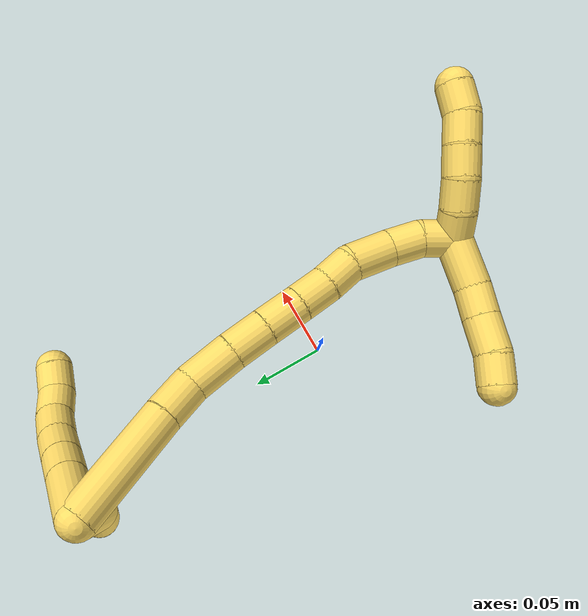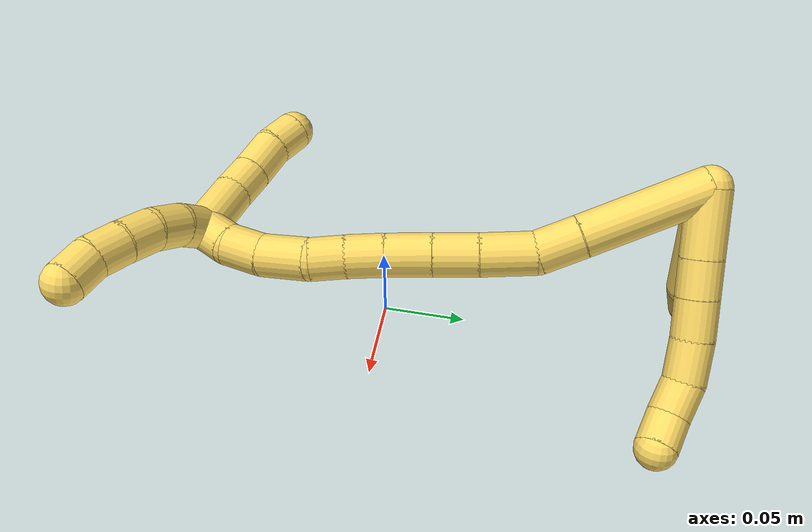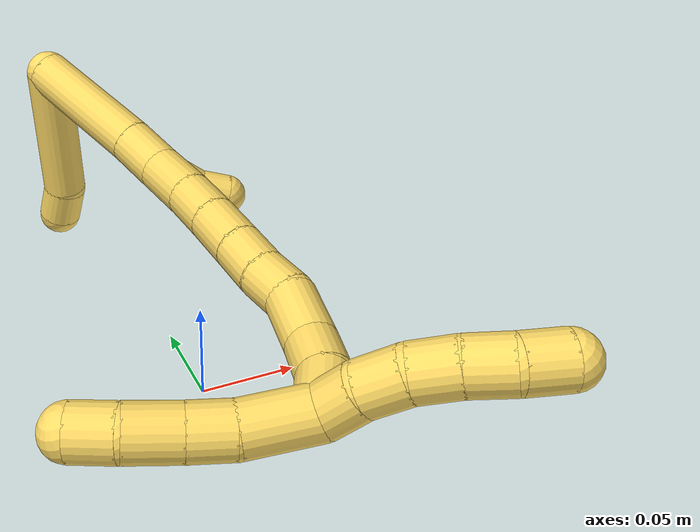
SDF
<sdf version="1.7">
 <world name="default">
  <model name="5">
   <static>0</static>
   <link name="5">
    <collision name="collision-cylinder-e_1_2_8">
     <pose>0.002743 0.005391 -0.018534 -2.85853 0.141178 -0.921262</pose>
     <geometry><cylinder><radius>0.0125</radius><length>0.038993</length></cylinder></geometry>
     <surface>
      <friction><ode><mu>1.16</mu><mu2>1.16</mu2><slip1>0</slip1><slip2>0</slip2></ode></friction>
      <contact><ode><kp>1e+06</kp><kd>1</kd><max_vel>0</max_vel><min_depth>0.001</min_depth></ode></contact>
     </surface>
    </collision>
    <visual name="visual-cylinder-e_1_2_8">
     <pose>0.002743 0.005391 -0.018534 -2.85853 0.141178 -0.921262</pose>
     <geometry><cylinder><radius>0.0125</radius><length>0.038993</length></cylinder></geometry>
     <material><ambient>1 0.858824 0.4 1</ambient></material>
    </visual>
    <collision name="collision-cylinder-e_2_8_9">
     <pose>0.006973 0.013836 -0.047473 -2.85613 0.136229 -0.886433</pose>
     <geometry><cylinder><radius>0.0125</radius><length>0.02189</length></cylinder></geometry>
     <surface>
      <friction><ode><mu>1.16</mu><mu2>1.16</mu2><slip1>0</slip1><slip2>0</slip2></ode></friction>
      <contact><ode><kp>1e+06</kp><kd>1</kd><max_vel>0</max_vel><min_depth>0.001</min_depth></ode></contact>
     </surface>
    </collision>
    <visual name="visual-cylinder-e_2_8_9">
     <pose>0.006973 0.013836 -0.047473 -2.85613 0.136229 -0.886433</pose>
     <geometry><cylinder><radius>0.0125</radius><length>0.02189</length></cylinder></geometry>
     <material><ambient>1 0.858824 0.4 1</ambient></material>
    </visual>
    <collision name="collision-cylinder-e_3_9_10">
     <pose>0.009973 0.02006 -0.069017 -2.8643 0.129939 -0.872555</pose>
     <geometry><cylinder><radius>0.0125</radius><length>0.02336</length></cylinder></geometry>
     <surface>
      <friction><ode><mu>1.16</mu><mu2>1.16</mu2><slip1>0</slip1><slip2>0</slip2></ode></friction>
      <contact><ode><kp>1e+06</kp><kd>1</kd><max_vel>0</max_vel><min_depth>0.001</min_depth></ode></contact>
     </surface>
    </collision>
    <visual name="visual-cylinder-e_3_9_10">
     <pose>0.009973 0.02006 -0.069017 -2.8643 0.129939 -0.872555</pose>
     <geometry><cylinder><radius>0.0125</radius><length>0.02336</length></cylinder></geometry>
     <material><ambient>1 0.858824 0.4 1</ambient></material>
    </visual>
    <collision name="collision-cylinder-e_4_10_11">
     <pose>0.014399 0.026337 -0.091719 -2.87916 0.23868 -1.47506</pose>
     <geometry><cylinder><radius>0.0125</radius><length>0.024644</length></cylinder></geometry>
     <surface>
      <friction><ode><mu>1.16</mu><mu2>1.16</mu2><slip1>0</slip1><slip2>0</slip2></ode></friction>
      <contact><ode><kp>1e+06</kp><kd>1</kd><max_vel>0</max_vel><min_depth>0.001</min_depth></ode></contact>
     </surface>
    </collision>
    <visual name="visual-cylinder-e_4_10_11">
     <pose>0.014399 0.026337 -0.091719 -2.87916 0.23868 -1.47506</pose>
     <geometry><cylinder><radius>0.0125</radius><length>0.024644</length></cylinder></geometry>
     <material><ambient>1 0.858824 0.4 1</ambient></material>
    </visual>
    <collision name="collision-cylinder-e_5_11_12">
     <pose>0.022742 0.031486 -0.112072 -2.91325 0.541638 -2.35824</pose>
     <geometry><cylinder><radius>0.0125</radius><length>0.021064</length></cylinder></geometry>
     <surface>
      <friction><ode><mu>1.16</mu><mu2>1.16</mu2><slip1>0</slip1><slip2>0</slip2></ode></friction>
      <contact><ode><kp>1e+06</kp><kd>1</kd><max_vel>0</max_vel><min_depth>0.001</min_depth></ode></contact>
     </surface>
    </collision>
    <visual name="visual-cylinder-e_5_11_12">
     <pose>0.022742 0.031486 -0.112072 -2.91325 0.541638 -2.35824</pose>
     <geometry><cylinder><radius>0.0125</radius><length>0.021064</length></cylinder></geometry>
     <material><ambient>1 0.858824 0.4 1</ambient></material>
    </visual>
    <collision name="collision-cylinder-e_6_12_6">
     <pose>0.034948 0.037489 -0.127099 -2.57583 0.742234 -1.8585</pose>
     <geometry><cylinder><radius>0.0125</radius><length>0.020049</length></cylinder></geometry>
     <surface>
      <friction><ode><mu>1.16</mu><mu2>1.16</mu2><slip1>0</slip1><slip2>0</slip2></ode></friction>
      <contact><ode><kp>1e+06</kp><kd>1</kd><max_vel>0</max_vel><min_depth>0.001</min_depth></ode></contact>
     </surface>
    </collision>
    <visual name="visual-cylinder-e_6_12_6">
     <pose>0.034948 0.037489 -0.127099 -2.57583 0.742234 -1.8585</pose>
     <geometry><cylinder><radius>0.0125</radius><length>0.020049</length></cylinder></geometry>
     <material><ambient>1 0.858824 0.4 1</ambient></material>
    </visual>
    <collision name="collision-cylinder-e_1_2_13">
     <pose>-0.0119 -0.008181 -0.036447 2.92078 -0.30841 -1.90255</pose>
     <geometry><cylinder><radius>0.0125</radius><length>0.078407</length></cylinder></geometry>
     <surface>
      <friction><ode><mu>1.16</mu><mu2>1.16</mu2><slip1>0</slip1><slip2>0</slip2></ode></friction>
      <contact><ode><kp>1e+06</kp><kd>1</kd><max_vel>0</max_vel><min_depth>0.001</min_depth></ode></contact>
     </surface>
    </collision>
    <visual name="visual-cylinder-e_1_2_13">
     <pose>-0.0119 -0.008181 -0.036447 2.92078 -0.30841 -1.90255</pose>
     <geometry><cylinder><radius>0.0125</radius><length>0.078407</length></cylinder></geometry>
     <material><ambient>1 0.858824 0.4 1</ambient></material>
    </visual>
    <collision name="collision-cylinder-e_2_13_5">
     <pose>-0.029754 -0.018867 -0.081545 2.85987 -0.584097 -2.26016</pose>
     <geometry><cylinder><radius>0.0125</radius><length>0.021593</length></cylinder></geometry>
     <surface>
      <friction><ode><mu>1.16</mu><mu2>1.16</mu2><slip1>0</slip1><slip2>0</slip2></ode></friction>
      <contact><ode><kp>1e+06</kp><kd>1</kd><max_vel>0</max_vel><min_depth>0.001</min_depth></ode></contact>
     </surface>
    </collision>
    <visual name="visual-cylinder-e_2_13_5">
     <pose>-0.029754 -0.018867 -0.081545 2.85987 -0.584097 -2.26016</pose>
     <geometry><cylinder><radius>0.0125</radius><length>0.021593</length></cylinder></geometry>
     <material><ambient>1 0.858824 0.4 1</ambient></material>
    </visual>
    <collision name="collision-cylinder-e_1_2_14">
     <pose>0.030129 -0.014168 -0.016441 2.4303 0.94654 1.88652</pose>
     <geometry><cylinder><radius>0.0125</radius><length>0.074263</length></cylinder></geometry>
     <surface>
      <friction><ode><mu>1.16</mu><mu2>1.16</mu2><slip1>0</slip1><slip2>0</slip2></ode></friction>
      <contact><ode><kp>1e+06</kp><kd>1</kd><max_vel>0</max_vel><min_depth>0.001</min_depth></ode></contact>
     </surface>
    </collision>
    <visual name="visual-cylinder-e_1_2_14">
     <pose>0.030129 -0.014168 -0.016441 2.4303 0.94654 1.88652</pose>
     <geometry><cylinder><radius>0.0125</radius><length>0.074263</length></cylinder></geometry>
     <material><ambient>1 0.858824 0.4 1</ambient></material>
    </visual>
    <collision name="collision-cylinder-e_2_14_15">
     <pose>0.070404 -0.033771 -0.038806 2.39936 0.900734 1.78622</pose>
     <geometry><cylinder><radius>0.0125</radius><length>0.025891</length></cylinder></geometry>
     <surface>
      <friction><ode><mu>1.16</mu><mu2>1.16</mu2><slip1>0</slip1><slip2>0</slip2></ode></friction>
      <contact><ode><kp>1e+06</kp><kd>1</kd><max_vel>0</max_vel><min_depth>0.001</min_depth></ode></contact>
     </surface>
    </collision>
    <visual name="visual-cylinder-e_2_14_15">
     <pose>0.070404 -0.033771 -0.038806 2.39936 0.900734 1.78622</pose>
     <geometry><cylinder><radius>0.0125</radius><length>0.025891</length></cylinder></geometry>
     <material><ambient>1 0.858824 0.4 1</ambient></material>
    </visual>
    <collision name="collision-cylinder-e_3_15_16">
     <pose>0.093639 -0.047773 -0.047172 1.8483 0.973173 1.22245</pose>
     <geometry><cylinder><radius>0.0125</radius><length>0.031667</length></cylinder></geometry>
     <surface>
      <friction><ode><mu>1.16</mu><mu2>1.16</mu2><slip1>0</slip1><slip2>0</slip2></ode></friction>
      <contact><ode><kp>1e+06</kp><kd>1</kd><max_vel>0</max_vel><min_depth>0.001</min_depth></ode></contact>
     </surface>
    </collision>
    <visual name="visual-cylinder-e_3_15_16">
     <pose>0.093639 -0.047773 -0.047172 1.8483 0.973173 1.22245</pose>
     <geometry><cylinder><radius>0.0125</radius><length>0.031667</length></cylinder></geometry>
     <material><ambient>1 0.858824 0.4 1</ambient></material>
    </visual>
    <collision name="collision-cylinder-e_4_16_17">
     <pose>0.116957 -0.06381 -0.051372 1.80219 0.927208 1.12642</pose>
     <geometry><cylinder><radius>0.0125</radius><length>0.025574</length></cylinder></geometry>
     <surface>
      <friction><ode><mu>1.16</mu><mu2>1.16</mu2><slip1>0</slip1><slip2>0</slip2></ode></friction>
      <contact><ode><kp>1e+06</kp><kd>1</kd><max_vel>0</max_vel><min_depth>0.001</min_depth></ode></contact>
     </surface>
    </collision>
    <visual name="visual-cylinder-e_4_16_17">
     <pose>0.116957 -0.06381 -0.051372 1.80219 0.927208 1.12642</pose>
     <geometry><cylinder><radius>0.0125</radius><length>0.025574</length></cylinder></geometry>
     <material><ambient>1 0.858824 0.4 1</ambient></material>
    </visual>
    <collision name="collision-cylinder-e_5_17_18">
     <pose>0.137537 -0.079118 -0.055209 1.82984 0.90622 1.12827</pose>
     <geometry><cylinder><radius>0.0125</radius><length>0.026299</length></cylinder></geometry>
     <surface>
      <friction><ode><mu>1.16</mu><mu2>1.16</mu2><slip1>0</slip1><slip2>0</slip2></ode></friction>
      <contact><ode><kp>1e+06</kp><kd>1</kd><max_vel>0</max_vel><min_depth>0.001</min_depth></ode></contact>
     </surface>
    </collision>
    <visual name="visual-cylinder-e_5_17_18">
     <pose>0.137537 -0.079118 -0.055209 1.82984 0.90622 1.12827</pose>
     <geometry><cylinder><radius>0.0125</radius><length>0.026299</length></cylinder></geometry>
     <material><ambient>1 0.858824 0.4 1</ambient></material>
    </visual>
    <collision name="collision-cylinder-e_6_18_19">
     <pose>0.1567 -0.093614 -0.059396 1.87767 0.900634 1.16721</pose>
     <geometry><cylinder><radius>0.0125</radius><length>0.022488</length></cylinder></geometry>
     <surface>
      <friction><ode><mu>1.16</mu><mu2>1.16</mu2><slip1>0</slip1><slip2>0</slip2></ode></friction>
      <contact><ode><kp>1e+06</kp><kd>1</kd><max_vel>0</max_vel><min_depth>0.001</min_depth></ode></contact>
     </surface>
    </collision>
    <visual name="visual-cylinder-e_6_18_19">
     <pose>0.1567 -0.093614 -0.059396 1.87767 0.900634 1.16721</pose>
     <geometry><cylinder><radius>0.0125</radius><length>0.022488</length></cylinder></geometry>
     <material><ambient>1 0.858824 0.4 1</ambient></material>
    </visual>
    <collision name="collision-cylinder-e_7_19_20">
     <pose>0.174303 -0.105615 -0.063447 1.91933 0.996706 1.32075</pose>
     <geometry><cylinder><radius>0.0125</radius><length>0.020937</length></cylinder></geometry>
     <surface>
      <friction><ode><mu>1.16</mu><mu2>1.16</mu2><slip1>0</slip1><slip2>0</slip2></ode></friction>
      <contact><ode><kp>1e+06</kp><kd>1</kd><max_vel>0</max_vel><min_depth>0.001</min_depth></ode></contact>
     </surface>
    </collision>
    <visual name="visual-cylinder-e_7_19_20">
     <pose>0.174303 -0.105615 -0.063447 1.91933 0.996706 1.32075</pose>
     <geometry><cylinder><radius>0.0125</radius><length>0.020937</length></cylinder></geometry>
     <material><ambient>1 0.858824 0.4 1</ambient></material>
    </visual>
    <collision name="collision-cylinder-e_8_20_21">
     <pose>0.192238 -0.122149 -0.067716 1.77587 0.674827 0.814406</pose>
     <geometry><cylinder><radius>0.0125</radius><length>0.029277</length></cylinder></geometry>
     <surface>
      <friction><ode><mu>1.16</mu><mu2>1.16</mu2><slip1>0</slip1><slip2>0</slip2></ode></friction>
      <contact><ode><kp>1e+06</kp><kd>1</kd><max_vel>0</max_vel><min_depth>0.001</min_depth></ode></contact>
     </surface>
    </collision>
    <visual name="visual-cylinder-e_8_20_21">
     <pose>0.192238 -0.122149 -0.067716 1.77587 0.674827 0.814406</pose>
     <geometry><cylinder><radius>0.0125</radius><length>0.029277</length></cylinder></geometry>
     <material><ambient>1 0.858824 0.4 1</ambient></material>
    </visual>
    <collision name="collision-cylinder-e_9_21_22">
     <pose>0.208183 -0.142099 -0.06947 1.50531 0.659033 0.619936</pose>
     <geometry><cylinder><radius>0.0125</radius><length>0.022208</length></cylinder></geometry>
     <surface>
      <friction><ode><mu>1.16</mu><mu2>1.16</mu2><slip1>0</slip1><slip2>0</slip2></ode></friction>
      <contact><ode><kp>1e+06</kp><kd>1</kd><max_vel>0</max_vel><min_depth>0.001</min_depth></ode></contact>
     </surface>
    </collision>
    <visual name="visual-cylinder-e_9_21_22">
     <pose>0.208183 -0.142099 -0.06947 1.50531 0.659033 0.619936</pose>
     <geometry><cylinder><radius>0.0125</radius><length>0.022208</length></cylinder></geometry>
     <material><ambient>1 0.858824 0.4 1</ambient></material>
    </visual>
    <collision name="collision-cylinder-e_10_22_1">
     <pose>0.218809 -0.160728 -0.067345 1.41498 0.365755 0.313721</pose>
     <geometry><cylinder><radius>0.0125</radius><length>0.021397</length></cylinder></geometry>
     <surface>
      <friction><ode><mu>1.16</mu><mu2>1.16</mu2><slip1>0</slip1><slip2>0</slip2></ode></friction>
      <contact><ode><kp>1e+06</kp><kd>1</kd><max_vel>0</max_vel><min_depth>0.001</min_depth></ode></contact>
     </surface>
    </collision>
    <visual name="visual-cylinder-e_10_22_1">
     <pose>0.218809 -0.160728 -0.067345 1.41498 0.365755 0.313721</pose>
     <geometry><cylinder><radius>0.0125</radius><length>0.021397</length></cylinder></geometry>
     <material><ambient>1 0.858824 0.4 1</ambient></material>
    </visual>
    <collision name="collision-cylinder-e_1_1_23">
     <pose>0.209766 -0.18073 -0.060327 1.076 -0.840922 -0.521463</pose>
     <geometry><cylinder><radius>0.0125</radius><length>0.034535</length></cylinder></geometry>
     <surface>
      <friction><ode><mu>1.16</mu><mu2>1.16</mu2><slip1>0</slip1><slip2>0</slip2></ode></friction>
      <contact><ode><kp>1e+06</kp><kd>1</kd><max_vel>0</max_vel><min_depth>0.001</min_depth></ode></contact>
     </surface>
    </collision>
    <visual name="visual-cylinder-e_1_1_23">
     <pose>0.209766 -0.18073 -0.060327 1.076 -0.840922 -0.521463</pose>
     <geometry><cylinder><radius>0.0125</radius><length>0.034535</length></cylinder></geometry>
     <material><ambient>1 0.858824 0.4 1</ambient></material>
    </visual>
    <collision name="collision-cylinder-e_2_23_24">
     <pose>0.188894 -0.195562 -0.050689 0.844785 -0.905295 -0.430383</pose>
     <geometry><cylinder><radius>0.0125</radius><length>0.020351</length></cylinder></geometry>
     <surface>
      <friction><ode><mu>1.16</mu><mu2>1.16</mu2><slip1>0</slip1><slip2>0</slip2></ode></friction>
      <contact><ode><kp>1e+06</kp><kd>1</kd><max_vel>0</max_vel><min_depth>0.001</min_depth></ode></contact>
     </surface>
    </collision>
    <visual name="visual-cylinder-e_2_23_24">
     <pose>0.188894 -0.195562 -0.050689 0.844785 -0.905295 -0.430383</pose>
     <geometry><cylinder><radius>0.0125</radius><length>0.020351</length></cylinder></geometry>
     <material><ambient>1 0.858824 0.4 1</ambient></material>
    </visual>
    <collision name="collision-cylinder-e_3_24_25">
     <pose>0.171417 -0.205893 -0.040804 0.778257 -0.868038 -0.37562</pose>
     <geometry><cylinder><radius>0.0125</radius><length>0.024827</length></cylinder></geometry>
     <surface>
      <friction><ode><mu>1.16</mu><mu2>1.16</mu2><slip1>0</slip1><slip2>0</slip2></ode></friction>
      <contact><ode><kp>1e+06</kp><kd>1</kd><max_vel>0</max_vel><min_depth>0.001</min_depth></ode></contact>
     </surface>
    </collision>
    <visual name="visual-cylinder-e_3_24_25">
     <pose>0.171417 -0.205893 -0.040804 0.778257 -0.868038 -0.37562</pose>
     <geometry><cylinder><radius>0.0125</radius><length>0.024827</length></cylinder></geometry>
     <material><ambient>1 0.858824 0.4 1</ambient></material>
    </visual>
    <collision name="collision-cylinder-e_4_25_4">
     <pose>0.153041 -0.214938 -0.031631 0.778573 -1.07117 -0.477599</pose>
     <geometry><cylinder><radius>0.0125</radius><length>0.020287</length></cylinder></geometry>
     <surface>
      <friction><ode><mu>1.16</mu><mu2>1.16</mu2><slip1>0</slip1><slip2>0</slip2></ode></friction>
      <contact><ode><kp>1e+06</kp><kd>1</kd><max_vel>0</max_vel><min_depth>0.001</min_depth></ode></contact>
     </surface>
    </collision>
    <visual name="visual-cylinder-e_4_25_4">
     <pose>0.153041 -0.214938 -0.031631 0.778573 -1.07117 -0.477599</pose>
     <geometry><cylinder><radius>0.0125</radius><length>0.020287</length></cylinder></geometry>
     <material><ambient>1 0.858824 0.4 1</ambient></material>
    </visual>
    <collision name="collision-cylinder-e_1_1_26">
     <pose>0.23127 -0.16706 -0.0622 -0.777533 1.04218 -0.461858</pose>
     <geometry><cylinder><radius>0.0125</radius><length>0.02</length></cylinder></geometry>
     <surface>
      <friction><ode><mu>1.16</mu><mu2>1.16</mu2><slip1>0</slip1><slip2>0</slip2></ode></friction>
      <contact><ode><kp>1e+06</kp><kd>1</kd><max_vel>0</max_vel><min_depth>0.001</min_depth></ode></contact>
     </surface>
    </collision>
    <visual name="visual-cylinder-e_1_1_26">
     <pose>0.23127 -0.16706 -0.0622 -0.777533 1.04218 -0.461858</pose>
     <geometry><cylinder><radius>0.0125</radius><length>0.02</length></cylinder></geometry>
     <material><ambient>1 0.858824 0.4 1</ambient></material>
    </visual>
    <collision name="collision-cylinder-e_2_26_27">
     <pose>0.249124 -0.159876 -0.057289 -1.2241 1.17275 -0.87271</pose>
     <geometry><cylinder><radius>0.0125</radius><length>0.02</length></cylinder></geometry>
     <surface>
      <friction><ode><mu>1.16</mu><mu2>1.16</mu2><slip1>0</slip1><slip2>0</slip2></ode></friction>
      <contact><ode><kp>1e+06</kp><kd>1</kd><max_vel>0</max_vel><min_depth>0.001</min_depth></ode></contact>
     </surface>
    </collision>
    <visual name="visual-cylinder-e_2_26_27">
     <pose>0.249124 -0.159876 -0.057289 -1.2241 1.17275 -0.87271</pose>
     <geometry><cylinder><radius>0.0125</radius><length>0.02</length></cylinder></geometry>
     <material><ambient>1 0.858824 0.4 1</ambient></material>
    </visual>
    <collision name="collision-cylinder-e_3_27_28">
     <pose>0.267681 -0.152808 -0.057005 -1.86398 1.20522 -1.49435</pose>
     <geometry><cylinder><radius>0.0125</radius><length>0.02</length></cylinder></geometry>
     <surface>
      <friction><ode><mu>1.16</mu><mu2>1.16</mu2><slip1>0</slip1><slip2>0</slip2></ode></friction>
      <contact><ode><kp>1e+06</kp><kd>1</kd><max_vel>0</max_vel><min_depth>0.001</min_depth></ode></contact>
     </surface>
    </collision>
    <visual name="visual-cylinder-e_3_27_28">
     <pose>0.267681 -0.152808 -0.057005 -1.86398 1.20522 -1.49435</pose>
     <geometry><cylinder><radius>0.0125</radius><length>0.02</length></cylinder></geometry>
     <material><ambient>1 0.858824 0.4 1</ambient></material>
    </visual>
    <collision name="collision-cylinder-e_4_28_29">
     <pose>0.286381 -0.146469 -0.060005 -2.16413 1.21127 -1.83182</pose>
     <geometry><cylinder><radius>0.0125</radius><length>0.02</length></cylinder></geometry>
     <surface>
      <friction><ode><mu>1.16</mu><mu2>1.16</mu2><slip1>0</slip1><slip2>0</slip2></ode></friction>
      <contact><ode><kp>1e+06</kp><kd>1</kd><max_vel>0</max_vel><min_depth>0.001</min_depth></ode></contact>
     </surface>
    </collision>
    <visual name="visual-cylinder-e_4_28_29">
     <pose>0.286381 -0.146469 -0.060005 -2.16413 1.21127 -1.83182</pose>
     <geometry><cylinder><radius>0.0125</radius><length>0.02</length></cylinder></geometry>
     <material><ambient>1 0.858824 0.4 1</ambient></material>
    </visual>
    <collision name="collision-cylinder-e_5_29_3">
     <pose>0.303829 -0.13881 -0.065452 -2.20383 0.942044 -1.5761</pose>
     <geometry><cylinder><radius>0.0125</radius><length>0.02</length></cylinder></geometry>
     <surface>
      <friction><ode><mu>1.16</mu><mu2>1.16</mu2><slip1>0</slip1><slip2>0</slip2></ode></friction>
      <contact><ode><kp>1e+06</kp><kd>1</kd><max_vel>0</max_vel><min_depth>0.001</min_depth></ode></contact>
     </surface>
    </collision>
    <visual name="visual-cylinder-e_5_29_3">
     <pose>0.303829 -0.13881 -0.065452 -2.20383 0.942044 -1.5761</pose>
     <geometry><cylinder><radius>0.0125</radius><length>0.02</length></cylinder></geometry>
     <material><ambient>1 0.858824 0.4 1</ambient></material>
    </visual>
    <collision name="collision-sphere-3">
     <pose>0.311917 -0.134069 -0.068931 0 -0 0</pose>
     <geometry><sphere><radius>0.0125</radius></sphere></geometry>
     <surface>
      <friction><ode><mu>1.16</mu><mu2>1.16</mu2><slip1>0</slip1><slip2>0</slip2></ode></friction>
      <contact><ode><kp>1e+06</kp><kd>1</kd><max_vel>0</max_vel><min_depth>0.001</min_depth></ode></contact>
     </surface>
    </collision>
    <visual name="visual-sphere-3">
     <pose>0.311917 -0.134069 -0.068931 0 -0 0</pose>
     <geometry><sphere><radius>0.0125</radius></sphere></geometry>
     <material><ambient>1 0.858824 0.4 1</ambient></material>
    </visual>
    <collision name="collision-sphere-29">
     <pose>0.295741 -0.143552 -0.061973 0 -0 0</pose>
     <geometry><sphere><radius>0.0125</radius></sphere></geometry>
     <surface>
      <friction><ode><mu>1.16</mu><mu2>1.16</mu2><slip1>0</slip1><slip2>0</slip2></ode></friction>
      <contact><ode><kp>1e+06</kp><kd>1</kd><max_vel>0</max_vel><min_depth>0.001</min_depth></ode></contact>
     </surface>
    </collision>
    <visual name="visual-sphere-29">
     <pose>0.295741 -0.143552 -0.061973 0 -0 0</pose>
     <geometry><sphere><radius>0.0125</radius></sphere></geometry>
     <material><ambient>1 0.858824 0.4 1</ambient></material>
    </visual>
    <collision name="collision-sphere-28">
     <pose>0.27702 -0.149386 -0.058038 0 -0 0</pose>
     <geometry><sphere><radius>0.0125</radius></sphere></geometry>
     <surface>
      <friction><ode><mu>1.16</mu><mu2>1.16</mu2><slip1>0</slip1><slip2>0</slip2></ode></friction>
      <contact><ode><kp>1e+06</kp><kd>1</kd><max_vel>0</max_vel><min_depth>0.001</min_depth></ode></contact>
     </surface>
    </collision>
    <visual name="visual-sphere-28">
     <pose>0.27702 -0.149386 -0.058038 0 -0 0</pose>
     <geometry><sphere><radius>0.0125</radius></sphere></geometry>
     <material><ambient>1 0.858824 0.4 1</ambient></material>
    </visual>
    <collision name="collision-sphere-27">
     <pose>0.258342 -0.156231 -0.055972 0 -0 0</pose>
     <geometry><sphere><radius>0.0125</radius></sphere></geometry>
     <surface>
      <friction><ode><mu>1.16</mu><mu2>1.16</mu2><slip1>0</slip1><slip2>0</slip2></ode></friction>
      <contact><ode><kp>1e+06</kp><kd>1</kd><max_vel>0</max_vel><min_depth>0.001</min_depth></ode></contact>
     </surface>
    </collision>
    <visual name="visual-sphere-27">
     <pose>0.258342 -0.156231 -0.055972 0 -0 0</pose>
     <geometry><sphere><radius>0.0125</radius></sphere></geometry>
     <material><ambient>1 0.858824 0.4 1</ambient></material>
    </visual>
    <collision name="collision-sphere-26">
     <pose>0.239905 -0.163522 -0.058606 0 -0 0</pose>
     <geometry><sphere><radius>0.0125</radius></sphere></geometry>
     <surface>
      <friction><ode><mu>1.16</mu><mu2>1.16</mu2><slip1>0</slip1><slip2>0</slip2></ode></friction>
      <contact><ode><kp>1e+06</kp><kd>1</kd><max_vel>0</max_vel><min_depth>0.001</min_depth></ode></contact>
     </surface>
    </collision>
    <visual name="visual-sphere-26">
     <pose>0.239905 -0.163522 -0.058606 0 -0 0</pose>
     <geometry><sphere><radius>0.0125</radius></sphere></geometry>
     <material><ambient>1 0.858824 0.4 1</ambient></material>
    </visual>
    <collision name="collision-sphere-4">
     <pose>0.144138 -0.218351 -0.028171 0 -0 0</pose>
     <geometry><sphere><radius>0.0125</radius></sphere></geometry>
     <surface>
      <friction><ode><mu>1.16</mu><mu2>1.16</mu2><slip1>0</slip1><slip2>0</slip2></ode></friction>
      <contact><ode><kp>1e+06</kp><kd>1</kd><max_vel>0</max_vel><min_depth>0.001</min_depth></ode></contact>
     </surface>
    </collision>
    <visual name="visual-sphere-4">
     <pose>0.144138 -0.218351 -0.028171 0 -0 0</pose>
     <geometry><sphere><radius>0.0125</radius></sphere></geometry>
     <material><ambient>1 0.858824 0.4 1</ambient></material>
    </visual>
    <collision name="collision-sphere-25">
     <pose>0.161945 -0.211525 -0.03509 0 -0 0</pose>
     <geometry><sphere><radius>0.0125</radius></sphere></geometry>
     <surface>
      <friction><ode><mu>1.16</mu><mu2>1.16</mu2><slip1>0</slip1><slip2>0</slip2></ode></friction>
      <contact><ode><kp>1e+06</kp><kd>1</kd><max_vel>0</max_vel><min_depth>0.001</min_depth></ode></contact>
     </surface>
    </collision>
    <visual name="visual-sphere-25">
     <pose>0.161945 -0.211525 -0.03509 0 -0 0</pose>
     <geometry><sphere><radius>0.0125</radius></sphere></geometry>
     <material><ambient>1 0.858824 0.4 1</ambient></material>
    </visual>
    <collision name="collision-sphere-24">
     <pose>0.18089 -0.20026 -0.046517 0 -0 0</pose>
     <geometry><sphere><radius>0.0125</radius></sphere></geometry>
     <surface>
      <friction><ode><mu>1.16</mu><mu2>1.16</mu2><slip1>0</slip1><slip2>0</slip2></ode></friction>
      <contact><ode><kp>1e+06</kp><kd>1</kd><max_vel>0</max_vel><min_depth>0.001</min_depth></ode></contact>
     </surface>
    </collision>
    <visual name="visual-sphere-24">
     <pose>0.18089 -0.20026 -0.046517 0 -0 0</pose>
     <geometry><sphere><radius>0.0125</radius></sphere></geometry>
     <material><ambient>1 0.858824 0.4 1</ambient></material>
    </visual>
    <collision name="collision-sphere-23">
     <pose>0.196898 -0.190863 -0.05486 0 -0 0</pose>
     <geometry><sphere><radius>0.0125</radius></sphere></geometry>
     <surface>
      <friction><ode><mu>1.16</mu><mu2>1.16</mu2><slip1>0</slip1><slip2>0</slip2></ode></friction>
      <contact><ode><kp>1e+06</kp><kd>1</kd><max_vel>0</max_vel><min_depth>0.001</min_depth></ode></contact>
     </surface>
    </collision>
    <visual name="visual-sphere-23">
     <pose>0.196898 -0.190863 -0.05486 0 -0 0</pose>
     <geometry><sphere><radius>0.0125</radius></sphere></geometry>
     <material><ambient>1 0.858824 0.4 1</ambient></material>
    </visual>
    <collision name="collision-sphere-1">
     <pose>0.222635 -0.170598 -0.065794 0 -0 0</pose>
     <geometry><sphere><radius>0.0125</radius></sphere></geometry>
     <surface>
      <friction><ode><mu>1.16</mu><mu2>1.16</mu2><slip1>0</slip1><slip2>0</slip2></ode></friction>
      <contact><ode><kp>1e+06</kp><kd>1</kd><max_vel>0</max_vel><min_depth>0.001</min_depth></ode></contact>
     </surface>
    </collision>
    <visual name="visual-sphere-1">
     <pose>0.222635 -0.170598 -0.065794 0 -0 0</pose>
     <geometry><sphere><radius>0.0125</radius></sphere></geometry>
     <material><ambient>1 0.858824 0.4 1</ambient></material>
    </visual>
    <collision name="collision-sphere-22">
     <pose>0.214983 -0.150858 -0.068895 0 -0 0</pose>
     <geometry><sphere><radius>0.0125</radius></sphere></geometry>
     <surface>
      <friction><ode><mu>1.16</mu><mu2>1.16</mu2><slip1>0</slip1><slip2>0</slip2></ode></friction>
      <contact><ode><kp>1e+06</kp><kd>1</kd><max_vel>0</max_vel><min_depth>0.001</min_depth></ode></contact>
     </surface>
    </collision>
    <visual name="visual-sphere-22">
     <pose>0.214983 -0.150858 -0.068895 0 -0 0</pose>
     <geometry><sphere><radius>0.0125</radius></sphere></geometry>
     <material><ambient>1 0.858824 0.4 1</ambient></material>
    </visual>
    <collision name="collision-sphere-21">
     <pose>0.201384 -0.133339 -0.070044 0 -0 0</pose>
     <geometry><sphere><radius>0.0125</radius></sphere></geometry>
     <surface>
      <friction><ode><mu>1.16</mu><mu2>1.16</mu2><slip1>0</slip1><slip2>0</slip2></ode></friction>
      <contact><ode><kp>1e+06</kp><kd>1</kd><max_vel>0</max_vel><min_depth>0.001</min_depth></ode></contact>
     </surface>
    </collision>
    <visual name="visual-sphere-21">
     <pose>0.201384 -0.133339 -0.070044 0 -0 0</pose>
     <geometry><sphere><radius>0.0125</radius></sphere></geometry>
     <material><ambient>1 0.858824 0.4 1</ambient></material>
    </visual>
    <collision name="collision-sphere-12">
     <pose>0.028172 0.033528 -0.120863 0 -0 0</pose>
     <geometry><sphere><radius>0.0125</radius></sphere></geometry>
     <surface>
      <friction><ode><mu>1.16</mu><mu2>1.16</mu2><slip1>0</slip1><slip2>0</slip2></ode></friction>
      <contact><ode><kp>1e+06</kp><kd>1</kd><max_vel>0</max_vel><min_depth>0.001</min_depth></ode></contact>
     </surface>
    </collision>
    <visual name="visual-sphere-12">
     <pose>0.028172 0.033528 -0.120863 0 -0 0</pose>
     <geometry><sphere><radius>0.0125</radius></sphere></geometry>
     <material><ambient>1 0.858824 0.4 1</ambient></material>
    </visual>
    <collision name="collision-sphere-11">
     <pose>0.017313 0.029443 -0.103282 0 -0 0</pose>
     <geometry><sphere><radius>0.0125</radius></sphere></geometry>
     <surface>
      <friction><ode><mu>1.16</mu><mu2>1.16</mu2><slip1>0</slip1><slip2>0</slip2></ode></friction>
      <contact><ode><kp>1e+06</kp><kd>1</kd><max_vel>0</max_vel><min_depth>0.001</min_depth></ode></contact>
     </surface>
    </collision>
    <visual name="visual-sphere-11">
     <pose>0.017313 0.029443 -0.103282 0 -0 0</pose>
     <geometry><sphere><radius>0.0125</radius></sphere></geometry>
     <material><ambient>1 0.858824 0.4 1</ambient></material>
    </visual>
    <collision name="collision-sphere-10">
     <pose>0.011486 0.023231 -0.080156 0 -0 0</pose>
     <geometry><sphere><radius>0.0125</radius></sphere></geometry>
     <surface>
      <friction><ode><mu>1.16</mu><mu2>1.16</mu2><slip1>0</slip1><slip2>0</slip2></ode></friction>
      <contact><ode><kp>1e+06</kp><kd>1</kd><max_vel>0</max_vel><min_depth>0.001</min_depth></ode></contact>
     </surface>
    </collision>
    <visual name="visual-sphere-10">
     <pose>0.011486 0.023231 -0.080156 0 -0 0</pose>
     <geometry><sphere><radius>0.0125</radius></sphere></geometry>
     <material><ambient>1 0.858824 0.4 1</ambient></material>
    </visual>
    <collision name="collision-sphere-9">
     <pose>0.008459 0.016889 -0.057878 0 -0 0</pose>
     <geometry><sphere><radius>0.0125</radius></sphere></geometry>
     <surface>
      <friction><ode><mu>1.16</mu><mu2>1.16</mu2><slip1>0</slip1><slip2>0</slip2></ode></friction>
      <contact><ode><kp>1e+06</kp><kd>1</kd><max_vel>0</max_vel><min_depth>0.001</min_depth></ode></contact>
     </surface>
    </collision>
    <visual name="visual-sphere-9">
     <pose>0.008459 0.016889 -0.057878 0 -0 0</pose>
     <geometry><sphere><radius>0.0125</radius></sphere></geometry>
     <material><ambient>1 0.858824 0.4 1</ambient></material>
    </visual>
    <collision name="collision-sphere-2">
     <geometry><sphere><radius>0.0125</radius></sphere></geometry>
     <surface>
      <friction><ode><mu>1.16</mu><mu2>1.16</mu2><slip1>0</slip1><slip2>0</slip2></ode></friction>
      <contact><ode><kp>1e+06</kp><kd>1</kd><max_vel>0</max_vel><min_depth>0.001</min_depth></ode></contact>
     </surface>
    </collision>
    <visual name="visual-sphere-2">
     <geometry><sphere><radius>0.0125</radius></sphere></geometry>
     <material><ambient>1 0.858824 0.4 1</ambient></material>
    </visual>
    <collision name="collision-sphere-19">
     <pose>0.165512 -0.100272 -0.061506 0 -0 0</pose>
     <geometry><sphere><radius>0.0125</radius></sphere></geometry>
     <surface>
      <friction><ode><mu>1.16</mu><mu2>1.16</mu2><slip1>0</slip1><slip2>0</slip2></ode></friction>
      <contact><ode><kp>1e+06</kp><kd>1</kd><max_vel>0</max_vel><min_depth>0.001</min_depth></ode></contact>
     </surface>
    </collision>
    <visual name="visual-sphere-19">
     <pose>0.165512 -0.100272 -0.061506 0 -0 0</pose>
     <geometry><sphere><radius>0.0125</radius></sphere></geometry>
     <material><ambient>1 0.858824 0.4 1</ambient></material>
    </visual>
    <collision name="collision-sphere-8">
     <pose>0.005487 0.010783 -0.037069 0 -0 0</pose>
     <geometry><sphere><radius>0.0125</radius></sphere></geometry>
     <surface>
      <friction><ode><mu>1.16</mu><mu2>1.16</mu2><slip1>0</slip1><slip2>0</slip2></ode></friction>
      <contact><ode><kp>1e+06</kp><kd>1</kd><max_vel>0</max_vel><min_depth>0.001</min_depth></ode></contact>
     </surface>
    </collision>
    <visual name="visual-sphere-8">
     <pose>0.005487 0.010783 -0.037069 0 -0 0</pose>
     <geometry><sphere><radius>0.0125</radius></sphere></geometry>
     <material><ambient>1 0.858824 0.4 1</ambient></material>
    </visual>
    <collision name="collision-sphere-6">
     <pose>0.041724 0.041449 -0.133336 0 -0 0</pose>
     <geometry><sphere><radius>0.0125</radius></sphere></geometry>
     <surface>
      <friction><ode><mu>1.16</mu><mu2>1.16</mu2><slip1>0</slip1><slip2>0</slip2></ode></friction>
      <contact><ode><kp>1e+06</kp><kd>1</kd><max_vel>0</max_vel><min_depth>0.001</min_depth></ode></contact>
     </surface>
    </collision>
    <visual name="visual-sphere-6">
     <pose>0.041724 0.041449 -0.133336 0 -0 0</pose>
     <geometry><sphere><radius>0.0125</radius></sphere></geometry>
     <material><ambient>1 0.858824 0.4 1</ambient></material>
    </visual>
    <collision name="collision-sphere-13">
     <pose>-0.0238 -0.016363 -0.072894 0 -0 0</pose>
     <geometry><sphere><radius>0.0125</radius></sphere></geometry>
     <surface>
      <friction><ode><mu>1.16</mu><mu2>1.16</mu2><slip1>0</slip1><slip2>0</slip2></ode></friction>
      <contact><ode><kp>1e+06</kp><kd>1</kd><max_vel>0</max_vel><min_depth>0.001</min_depth></ode></contact>
     </surface>
    </collision>
    <visual name="visual-sphere-13">
     <pose>-0.0238 -0.016363 -0.072894 0 -0 0</pose>
     <geometry><sphere><radius>0.0125</radius></sphere></geometry>
     <material><ambient>1 0.858824 0.4 1</ambient></material>
    </visual>
    <collision name="collision-sphere-5">
     <pose>-0.035707 -0.02137 -0.090197 0 -0 0</pose>
     <geometry><sphere><radius>0.0125</radius></sphere></geometry>
     <surface>
      <friction><ode><mu>1.16</mu><mu2>1.16</mu2><slip1>0</slip1><slip2>0</slip2></ode></friction>
      <contact><ode><kp>1e+06</kp><kd>1</kd><max_vel>0</max_vel><min_depth>0.001</min_depth></ode></contact>
     </surface>
    </collision>
    <visual name="visual-sphere-5">
     <pose>-0.035707 -0.02137 -0.090197 0 -0 0</pose>
     <geometry><sphere><radius>0.0125</radius></sphere></geometry>
     <material><ambient>1 0.858824 0.4 1</ambient></material>
    </visual>
    <collision name="collision-sphere-14">
     <pose>0.060257 -0.028336 -0.032881 0 -0 0</pose>
     <geometry><sphere><radius>0.0125</radius></sphere></geometry>
     <surface>
      <friction><ode><mu>1.16</mu><mu2>1.16</mu2><slip1>0</slip1><slip2>0</slip2></ode></friction>
      <contact><ode><kp>1e+06</kp><kd>1</kd><max_vel>0</max_vel><min_depth>0.001</min_depth></ode></contact>
     </surface>
    </collision>
    <visual name="visual-sphere-14">
     <pose>0.060257 -0.028336 -0.032881 0 -0 0</pose>
     <geometry><sphere><radius>0.0125</radius></sphere></geometry>
     <material><ambient>1 0.858824 0.4 1</ambient></material>
    </visual>
    <collision name="collision-sphere-15">
     <pose>0.08055 -0.039205 -0.044731 0 -0 0</pose>
     <geometry><sphere><radius>0.0125</radius></sphere></geometry>
     <surface>
      <friction><ode><mu>1.16</mu><mu2>1.16</mu2><slip1>0</slip1><slip2>0</slip2></ode></friction>
      <contact><ode><kp>1e+06</kp><kd>1</kd><max_vel>0</max_vel><min_depth>0.001</min_depth></ode></contact>
     </surface>
    </collision>
    <visual name="visual-sphere-15">
     <pose>0.08055 -0.039205 -0.044731 0 -0 0</pose>
     <geometry><sphere><radius>0.0125</radius></sphere></geometry>
     <material><ambient>1 0.858824 0.4 1</ambient></material>
    </visual>
    <collision name="collision-sphere-16">
     <pose>0.106729 -0.056342 -0.049612 0 -0 0</pose>
     <geometry><sphere><radius>0.0125</radius></sphere></geometry>
     <surface>
      <friction><ode><mu>1.16</mu><mu2>1.16</mu2><slip1>0</slip1><slip2>0</slip2></ode></friction>
      <contact><ode><kp>1e+06</kp><kd>1</kd><max_vel>0</max_vel><min_depth>0.001</min_depth></ode></contact>
     </surface>
    </collision>
    <visual name="visual-sphere-16">
     <pose>0.106729 -0.056342 -0.049612 0 -0 0</pose>
     <geometry><sphere><radius>0.0125</radius></sphere></geometry>
     <material><ambient>1 0.858824 0.4 1</ambient></material>
    </visual>
    <collision name="collision-sphere-17">
     <pose>0.127186 -0.071279 -0.053132 0 -0 0</pose>
     <geometry><sphere><radius>0.0125</radius></sphere></geometry>
     <surface>
      <friction><ode><mu>1.16</mu><mu2>1.16</mu2><slip1>0</slip1><slip2>0</slip2></ode></friction>
      <contact><ode><kp>1e+06</kp><kd>1</kd><max_vel>0</max_vel><min_depth>0.001</min_depth></ode></contact>
     </surface>
    </collision>
    <visual name="visual-sphere-17">
     <pose>0.127186 -0.071279 -0.053132 0 -0 0</pose>
     <geometry><sphere><radius>0.0125</radius></sphere></geometry>
     <material><ambient>1 0.858824 0.4 1</ambient></material>
    </visual>
    <collision name="collision-sphere-18">
     <pose>0.147888 -0.086957 -0.057286 0 -0 0</pose>
     <geometry><sphere><radius>0.0125</radius></sphere></geometry>
     <surface>
      <friction><ode><mu>1.16</mu><mu2>1.16</mu2><slip1>0</slip1><slip2>0</slip2></ode></friction>
      <contact><ode><kp>1e+06</kp><kd>1</kd><max_vel>0</max_vel><min_depth>0.001</min_depth></ode></contact>
     </surface>
    </collision>
    <visual name="visual-sphere-18">
     <pose>0.147888 -0.086957 -0.057286 0 -0 0</pose>
     <geometry><sphere><radius>0.0125</radius></sphere></geometry>
     <material><ambient>1 0.858824 0.4 1</ambient></material>
    </visual>
    <collision name="collision-sphere-20">
     <pose>0.183093 -0.110958 -0.065389 0 -0 0</pose>
     <geometry><sphere><radius>0.0125</radius></sphere></geometry>
     <surface>
      <friction><ode><mu>1.16</mu><mu2>1.16</mu2><slip1>0</slip1><slip2>0</slip2></ode></friction>
      <contact><ode><kp>1e+06</kp><kd>1</kd><max_vel>0</max_vel><min_depth>0.001</min_depth></ode></contact>
     </surface>
    </collision>
    <visual name="visual-sphere-20">
     <pose>0.183093 -0.110958 -0.065389 0 -0 0</pose>
     <geometry><sphere><radius>0.0125</radius></sphere></geometry>
     <material><ambient>1 0.858824 0.4 1</ambient></material>
    </visual>
    <inertial>
     <pose>0.108542 -0.072849 -0.053448 0 -0 0</pose>
     <mass>0.75</mass>
     <inertia><ixx>-1e-05</ixx><ixy>0</ixy><ixz>0</ixz><iyy>2.9e-05</iyy><iyz>0</iyz><izz>-1.9e-05</izz></inertia>
    </inertial>
   </link>
   <pose>-0.027152 0.17662 0.111262 0.29815 -0.288785 -0.90157</pose>
  </model>
 </world>
</sdf>
